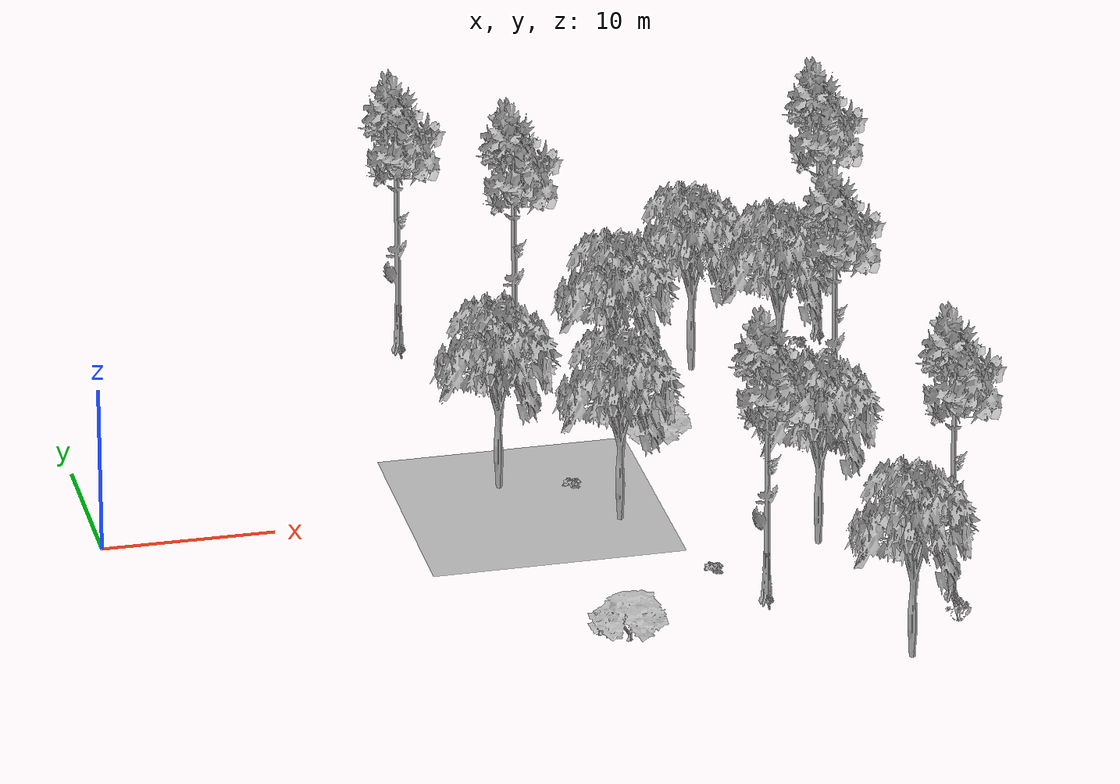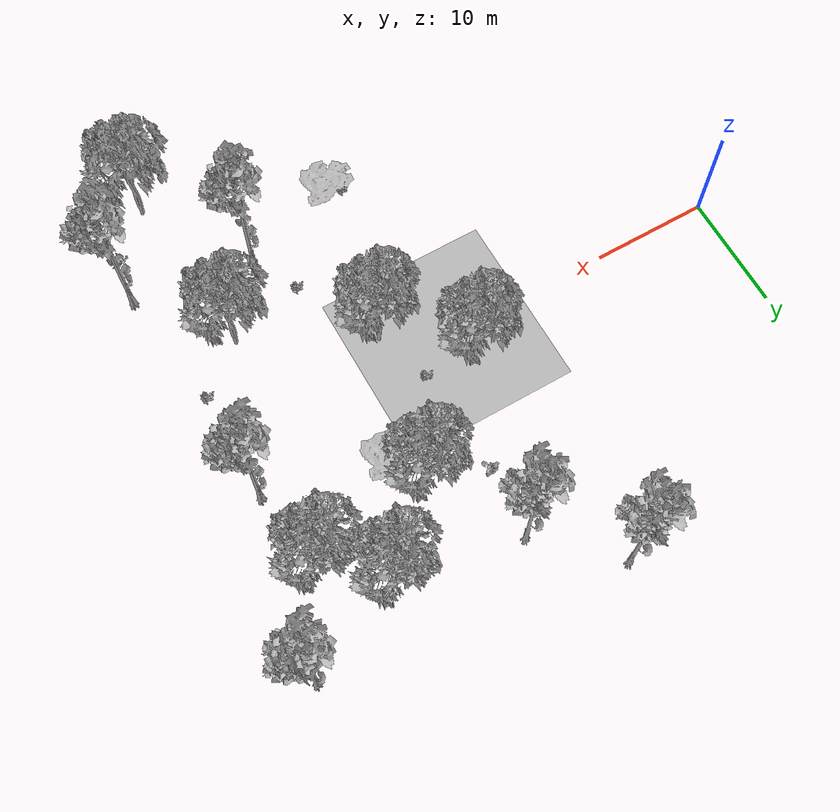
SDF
<sdf version="1.7">
 <world name="default">
  <model name="ground_plane">
   <static>1</static>
   <link name="link">
    <collision name="collision">
     <pose>25.0 0 0 0 -0 0</pose>
     <geometry><plane><normal>0 0 1</normal><size>50 50</size></plane></geometry>
     <surface><contact><ode><min_depth>0.01</min_depth><max_vel>0</max_vel></ode></contact></surface>
    </collision>
    <visual name="grass">
     <pose>25.0 0 0 0 -0 0</pose>
     <cast_shadows>0</cast_shadows>
     <geometry>
      <mesh>
       <scale>0.2731578947368421 0.2802702702702703 0.1</scale>
       <uri>file://grass_plane/meshes/grass_plane.dae</uri>
      </mesh>
     </geometry>
    </visual>
   </link>
  </model>
  <model name="Tree 0">
   <static>1</static>
   <pose>38.396690245468506 15.763056459056664 0 1.57079 -0 0</pose>
   <link name="link">
    <collision name="collision">
     <geometry><mesh><scale>3.5 5 3.5</scale><uri>model://tree_2/meshes/tree_2.obj</uri></mesh></geometry>
    </collision>
    <visual name="visual">
     <geometry><mesh><scale>3.5 5 3.5</scale><uri>model://tree_2/meshes/tree_2.obj</uri></mesh></geometry>
    </visual>
   </link>
  </model>
  <model name="Tree 2">
   <static>1</static>
   <pose>26.646690245468506 -17.570276874276658 0 1.57079 -0 0</pose>
   <link name="link">
    <collision name="collision">
     <geometry><mesh><scale>3 2 3</scale><uri>model://tree_3/meshes/tree_3.obj</uri></mesh></geometry>
    </collision>
    <visual name="visual">
     <geometry><mesh><scale>3 2 3</scale><uri>model://tree_3/meshes/tree_3.obj</uri></mesh></geometry>
    </visual>
   </link>
  </model>
  <model name="Tree 4">
   <static>1</static>
   <pose>44.271690245468506 4.651945347945556 0 1.57079 -0 0</pose>
   <link name="link">
    <collision name="collision">
     <geometry><mesh><scale>3.5 5 3.5</scale><uri>model://tree_9/meshes/tree_9.obj</uri></mesh></geometry>
    </collision>
    <visual name="visual">
     <geometry><mesh><scale>3.5 5 3.5</scale><uri>model://tree_9/meshes/tree_9.obj</uri></mesh></geometry>
    </visual>
   </link>
  </model>
  <model name="Tree 6">
   <static>1</static>
   <pose>32.521690245468506 10.207500903501113 0 1.57079 -0 0</pose>
   <link name="link">
    <collision name="collision">
     <geometry><mesh><scale>3.5 5 3.5</scale><uri>model://tree_2/meshes/tree_2.obj</uri></mesh></geometry>
    </collision>
    <visual name="visual">
     <geometry><mesh><scale>3.5 5 3.5</scale><uri>model://tree_2/meshes/tree_2.obj</uri></mesh></geometry>
    </visual>
   </link>
  </model>
  <model name="Tree 8">
   <static>1</static>
   <pose>41.334190245468506 -23.125832429832215 0 1.57079 -0 0</pose>
   <link name="link">
    <collision name="collision">
     <geometry><mesh><scale>3.5 5 3.5</scale><uri>model://tree_2/meshes/tree_2.obj</uri></mesh></geometry>
    </collision>
    <visual name="visual">
     <geometry><mesh><scale>3.5 5 3.5</scale><uri>model://tree_2/meshes/tree_2.obj</uri></mesh></geometry>
    </visual>
   </link>
  </model>
  <model name="Tree 10">
   <static>1</static>
   <pose>29.584190245468506 -2.755462059461852 0 1.57079 -0 0</pose>
   <link name="link">
    <collision name="collision">
     <geometry><mesh><scale>3.5 5 3.5</scale><uri>model://tree_2/meshes/tree_2.obj</uri></mesh></geometry>
    </collision>
    <visual name="visual">
     <geometry><mesh><scale>3.5 5 3.5</scale><uri>model://tree_2/meshes/tree_2.obj</uri></mesh></geometry>
    </visual>
   </link>
  </model>
  <model name="Tree 12">
   <static>1</static>
   <pose>47.209190245468506 19.466760162760373 0 1.57079 -0 0</pose>
   <link name="link">
    <collision name="collision">
     <geometry><mesh><scale>3.5 5 3.5</scale><uri>model://tree_9/meshes/tree_9.obj</uri></mesh></geometry>
    </collision>
    <visual name="visual">
     <geometry><mesh><scale>3.5 5 3.5</scale><uri>model://tree_9/meshes/tree_9.obj</uri></mesh></geometry>
    </visual>
   </link>
  </model>
  <model name="Tree 13">
   <static>1</static>
   <pose>23.709190245468506 2.8000934960937087 0 1.57079 -0 0</pose>
   <link name="link">
    <collision name="collision">
     <geometry><mesh><scale>3.5 5 3.5</scale><uri>model://tree_2/meshes/tree_2.obj</uri></mesh></geometry>
    </collision>
    <visual name="visual">
     <geometry><mesh><scale>3.5 5 3.5</scale><uri>model://tree_2/meshes/tree_2.obj</uri></mesh></geometry>
    </visual>
   </link>
  </model>
  <model name="Tree 14">
   <static>1</static>
   <pose>35.459190245468506 -13.866573170572956 0 1.57079 -0 0</pose>
   <link name="link">
    <collision name="collision">
     <geometry><mesh><scale>3.5 5 3.5</scale><uri>model://tree_9/meshes/tree_9.obj</uri></mesh></geometry>
    </collision>
    <visual name="visual">
     <geometry><mesh><scale>3.5 5 3.5</scale><uri>model://tree_9/meshes/tree_9.obj</uri></mesh></geometry>
    </visual>
   </link>
  </model>
  <model name="Tree 16">
   <static>1</static>
   <pose>39.865440245468506 -8.311017615017409 0 1.57079 -0 0</pose>
   <link name="link">
    <collision name="collision">
     <geometry><mesh><scale>3.5 5 3.5</scale><uri>model://tree_2/meshes/tree_2.obj</uri></mesh></geometry>
    </collision>
    <visual name="visual">
     <geometry><mesh><scale>3.5 5 3.5</scale><uri>model://tree_2/meshes/tree_2.obj</uri></mesh></geometry>
    </visual>
   </link>
  </model>
  <model name="Tree 18">
   <static>1</static>
   <pose>28.115440245468506 17.61490831090852 0 1.57079 -0 0</pose>
   <link name="link">
    <collision name="collision">
     <geometry><mesh><scale>3.5 5 3.5</scale><uri>model://tree_9/meshes/tree_9.obj</uri></mesh></geometry>
    </collision>
    <visual name="visual">
     <geometry><mesh><scale>3.5 5 3.5</scale><uri>model://tree_9/meshes/tree_9.obj</uri></mesh></geometry>
    </visual>
   </link>
  </model>
  <model name="Tree 20">
   <static>1</static>
   <pose>45.740440245468506 -15.718425022424807 0 1.57079 -0 0</pose>
   <link name="link">
    <collision name="collision">
     <geometry><mesh><scale>3.5 5 3.5</scale><uri>model://tree_9/meshes/tree_9.obj</uri></mesh></geometry>
    </collision>
    <visual name="visual">
     <geometry><mesh><scale>3.5 5 3.5</scale><uri>model://tree_9/meshes/tree_9.obj</uri></mesh></geometry>
    </visual>
   </link>
  </model>
  <model name="Tree 21">
   <static>1</static>
   <pose>22.240440245468506 23.170463866464075 0 1.57079 -0 0</pose>
   <link name="link">
    <collision name="collision">
     <geometry><mesh><scale>3.5 5 3.5</scale><uri>model://tree_9/meshes/tree_9.obj</uri></mesh></geometry>
    </collision>
    <visual name="visual">
     <geometry><mesh><scale>3.5 5 3.5</scale><uri>model://tree_9/meshes/tree_9.obj</uri></mesh></geometry>
    </visual>
   </link>
  </model>
  <model name="Tree 22">
   <static>1</static>
   <pose>33.990440245468506 6.503797199797411 0 1.57079 -0 0</pose>
   <link name="link">
    <collision name="collision">
     <geometry><mesh><scale>3 2 3</scale><uri>model://tree_3/meshes/tree_3.obj</uri></mesh></geometry>
    </collision>
    <visual name="visual">
     <geometry><mesh><scale>3 2 3</scale><uri>model://tree_3/meshes/tree_3.obj</uri></mesh></geometry>
    </visual>
   </link>
  </model>
  <model name="Tree 24">
   <static>1</static>
   <pose>42.802940245468506 12.059352755352961 0 1.57079 -0 0</pose>
   <link name="link">
    <collision name="collision">
     <geometry><mesh><scale>3.5 5 3.5</scale><uri>model://tree_2/meshes/tree_2.obj</uri></mesh></geometry>
    </collision>
    <visual name="visual">
     <geometry><mesh><scale>3.5 5 3.5</scale><uri>model://tree_2/meshes/tree_2.obj</uri></mesh></geometry>
    </visual>
   </link>
  </model>
  <model name="Bush 5">
   <static>1</static>
   <pose>27.93936163054739 2.040887781651797 0 1.57079 -0 0</pose>
   <link name="link">
    <collision name="collision">
     <geometry><mesh><scale>2 2 2</scale><uri>model://bush_2/meshes/bush_2.obj</uri></mesh></geometry>
     <surface><contact><collide_without_contact>false</collide_without_contact></contact></surface>
    </collision>
    <visual name="visual">
     <geometry><mesh><scale>2 2 2</scale><uri>model://bush_2/meshes/bush_2.obj</uri></mesh></geometry>
    </visual>
   </link>
  </model>
  <model name="Bush 6">
   <static>1</static>
   <pose>45.54320518406995 17.759573831484083 0 1.57079 -0 0</pose>
   <link name="link">
    <collision name="collision">
     <geometry><mesh><scale>2 2 2</scale><uri>model://bush_2/meshes/bush_2.obj</uri></mesh></geometry>
     <surface><contact><collide_without_contact>false</collide_without_contact></contact></surface>
    </collision>
    <visual name="visual">
     <geometry><mesh><scale>2 2 2</scale><uri>model://bush_2/meshes/bush_2.obj</uri></mesh></geometry>
    </visual>
   </link>
  </model>
  <model name="Bush 7">
   <static>1</static>
   <pose>33.282528082956105 -10.298863301315887 0 1.57079 -0 0</pose>
   <link name="link">
    <collision name="collision">
     <geometry><mesh><scale>2 2 2</scale><uri>model://bush_2/meshes/bush_2.obj</uri></mesh></geometry>
     <surface><contact><collide_without_contact>false</collide_without_contact></contact></surface>
    </collision>
    <visual name="visual">
     <geometry><mesh><scale>2 2 2</scale><uri>model://bush_2/meshes/bush_2.obj</uri></mesh></geometry>
    </visual>
   </link>
  </model>
  <model name="Bush 8">
   <static>1</static>
   <pose>25.54704463234412 -16.761225990816747 0 1.57079 -0 0</pose>
   <link name="link">
    <collision name="collision">
     <geometry><mesh><scale>2 2 2</scale><uri>model://bush_2/meshes/bush_2.obj</uri></mesh></geometry>
     <surface><contact><collide_without_contact>false</collide_without_contact></contact></surface>
    </collision>
    <visual name="visual">
     <geometry><mesh><scale>2 2 2</scale><uri>model://bush_2/meshes/bush_2.obj</uri></mesh></geometry>
    </visual>
   </link>
  </model>
  <model name="Bush 9">
   <static>1</static>
   <pose>44.14221954398673 -5.094134273055296 0 1.57079 -0 0</pose>
   <link name="link">
    <collision name="collision">
     <geometry><mesh><scale>2 2 2</scale><uri>model://bush_2/meshes/bush_2.obj</uri></mesh></geometry>
     <surface><contact><collide_without_contact>false</collide_without_contact></contact></surface>
    </collision>
    <visual name="visual">
     <geometry><mesh><scale>2 2 2</scale><uri>model://bush_2/meshes/bush_2.obj</uri></mesh></geometry>
    </visual>
   </link>
  </model>
  <model name="Bush 10">
   <static>1</static>
   <pose>27.829764142394097 11.705465196586765 0 1.57079 -0 0</pose>
   <link name="link">
    <collision name="collision">
     <geometry><mesh><scale>2 2 2</scale><uri>model://bush_0/meshes/bush_0.obj</uri></mesh></geometry>
     <surface><contact><collide_without_contact>false</collide_without_contact></contact></surface>
    </collision>
    <visual name="visual">
     <geometry><mesh><scale>2 2 2</scale><uri>model://bush_0/meshes/bush_0.obj</uri></mesh></geometry>
    </visual>
   </link>
  </model>
  <model name="Bush 17">
   <static>1</static>
   <pose>45.12833244952443 -19.565845163136828 0 1.57079 -0 0</pose>
   <link name="link">
    <collision name="collision">
     <geometry><mesh><scale>2 2 2</scale><uri>model://bush_4/meshes/bush_4.obj</uri></mesh></geometry>
     <surface><contact><collide_without_contact>false</collide_without_contact></contact></surface>
    </collision>
    <visual name="visual">
     <geometry><mesh><scale>2 2 2</scale><uri>model://bush_4/meshes/bush_4.obj</uri></mesh></geometry>
    </visual>
   </link>
  </model>
 </world>
</sdf>
